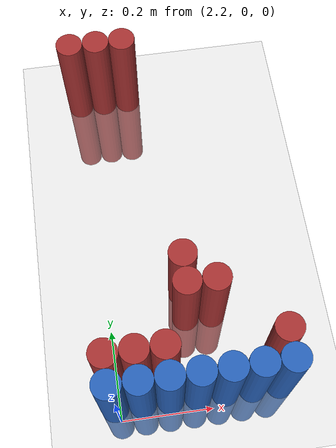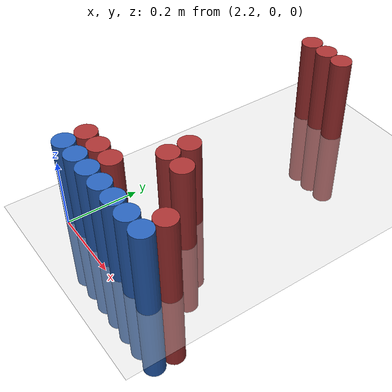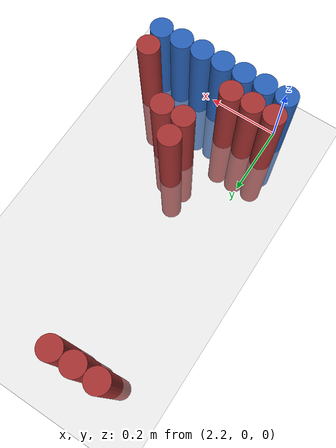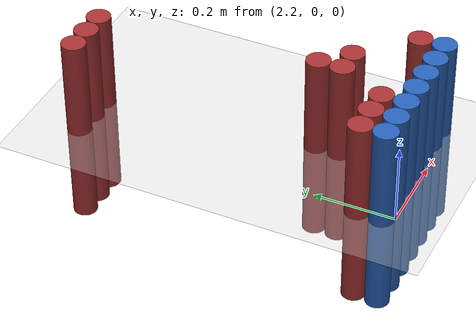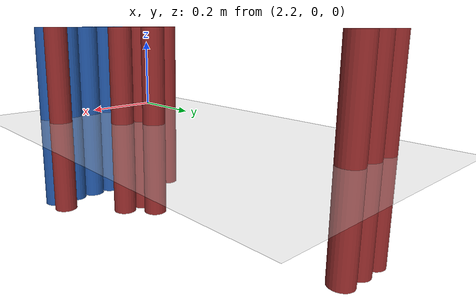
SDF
<sdf version="1.6">
 <world name="default">
  <model name="ground_plane">
   <static>1</static>
   <link name="link">
    <collision name="collision">
     <geometry><plane><normal>0 0 1</normal><size>100 100</size></plane></geometry>
     <surface><friction><ode><mu>100</mu><mu2>50</mu2></ode></friction></surface>
    </collision>
    <visual name="visual">
     <cast_shadows>0</cast_shadows>
     <geometry><plane><normal>0 0 1</normal><size>100 100</size></plane></geometry>
     <material>
      <script><uri>file://media/materials/scripts/gazebo.material</uri><name>Gazebo/Grey</name></script>
     </material>
    </visual>
   </link>
  </model>
  <model name="unit_cylinder_186">
   <static>1</static>
   <pose>2.190000 0.810000 0.000000 0.000000 0.000000 0.000000</pose>
   <link name="link">
    <inertial>
     <mass>1</mass>
     <inertia><ixx>0.145833</ixx><ixy>0</ixy><ixz>0</ixz><iyy>0.145833</iyy><iyz>0</iyz><izz>0.125</izz></inertia>
    </inertial>
    <collision name="collision">
     <geometry><cylinder><radius>0.030000</radius><length>0.5</length></cylinder></geometry>
    </collision>
    <visual name="visual">
     <geometry><cylinder><radius>0.030000</radius><length>0.5</length></cylinder></geometry>
     <material>
      <ambient>0.648000 0.192000 0.192000 1</ambient>
      <diffuse>0.648000 0.192000 0.192000 1</diffuse>
     </material>
     <material>
      <script><name>Gazebo/Grey</name><uri>file://media/materials/scripts/gazebo.material</uri></script>
     </material>
    </visual>
   </link>
  </model>
  <model name="unit_cylinder_187">
   <static>1</static>
   <pose>2.250000 0.810000 0.000000 0.000000 0.000000 0.000000</pose>
   <link name="link">
    <inertial>
     <mass>1</mass>
     <inertia><ixx>0.145833</ixx><ixy>0</ixy><ixz>0</ixz><iyy>0.145833</iyy><iyz>0</iyz><izz>0.125</izz></inertia>
    </inertial>
    <collision name="collision">
     <geometry><cylinder><radius>0.030000</radius><length>0.5</length></cylinder></geometry>
    </collision>
    <visual name="visual">
     <geometry><cylinder><radius>0.030000</radius><length>0.5</length></cylinder></geometry>
     <material>
      <ambient>0.648000 0.192000 0.192000 1</ambient>
      <diffuse>0.648000 0.192000 0.192000 1</diffuse>
     </material>
     <material>
      <script><name>Gazebo/Grey</name><uri>file://media/materials/scripts/gazebo.material</uri></script>
     </material>
    </visual>
   </link>
  </model>
  <model name="unit_cylinder_188">
   <static>1</static>
   <pose>2.310000 0.810000 0.000000 0.000000 0.000000 0.000000</pose>
   <link name="link">
    <inertial>
     <mass>1</mass>
     <inertia><ixx>0.145833</ixx><ixy>0</ixy><ixz>0</ixz><iyy>0.145833</iyy><iyz>0</iyz><izz>0.125</izz></inertia>
    </inertial>
    <collision name="collision">
     <geometry><cylinder><radius>0.030000</radius><length>0.5</length></cylinder></geometry>
    </collision>
    <visual name="visual">
     <geometry><cylinder><radius>0.030000</radius><length>0.5</length></cylinder></geometry>
     <material>
      <ambient>0.648000 0.192000 0.192000 1</ambient>
      <diffuse>0.648000 0.192000 0.192000 1</diffuse>
     </material>
     <material>
      <script><name>Gazebo/Grey</name><uri>file://media/materials/scripts/gazebo.material</uri></script>
     </material>
    </visual>
   </link>
  </model>
  <model name="unit_cylinder_203">
   <static>1</static>
   <pose>2.370000 0.270000 0.000000 0.000000 0.000000 0.000000</pose>
   <link name="link">
    <inertial>
     <mass>1</mass>
     <inertia><ixx>0.145833</ixx><ixy>0</ixy><ixz>0</ixz><iyy>0.145833</iyy><iyz>0</iyz><izz>0.125</izz></inertia>
    </inertial>
    <collision name="collision">
     <geometry><cylinder><radius>0.030000</radius><length>0.5</length></cylinder></geometry>
    </collision>
    <visual name="visual">
     <geometry><cylinder><radius>0.030000</radius><length>0.5</length></cylinder></geometry>
     <material>
      <ambient>0.648000 0.192000 0.192000 1</ambient>
      <diffuse>0.648000 0.192000 0.192000 1</diffuse>
     </material>
     <material>
      <script><name>Gazebo/Grey</name><uri>file://media/materials/scripts/gazebo.material</uri></script>
     </material>
    </visual>
   </link>
  </model>
  <model name="unit_cylinder_205">
   <static>1</static>
   <pose>2.370000 0.210000 0.000000 0.000000 0.000000 0.000000</pose>
   <link name="link">
    <inertial>
     <mass>1</mass>
     <inertia><ixx>0.145833</ixx><ixy>0</ixy><ixz>0</ixz><iyy>0.145833</iyy><iyz>0</iyz><izz>0.125</izz></inertia>
    </inertial>
    <collision name="collision">
     <geometry><cylinder><radius>0.030000</radius><length>0.5</length></cylinder></geometry>
    </collision>
    <visual name="visual">
     <geometry><cylinder><radius>0.030000</radius><length>0.5</length></cylinder></geometry>
     <material>
      <ambient>0.648000 0.192000 0.192000 1</ambient>
      <diffuse>0.648000 0.192000 0.192000 1</diffuse>
     </material>
     <material>
      <script><name>Gazebo/Grey</name><uri>file://media/materials/scripts/gazebo.material</uri></script>
     </material>
    </visual>
   </link>
  </model>
  <model name="unit_cylinder_206">
   <static>1</static>
   <pose>2.430000 0.210000 0.000000 0.000000 0.000000 0.000000</pose>
   <link name="link">
    <inertial>
     <mass>1</mass>
     <inertia><ixx>0.145833</ixx><ixy>0</ixy><ixz>0</ixz><iyy>0.145833</iyy><iyz>0</iyz><izz>0.125</izz></inertia>
    </inertial>
    <collision name="collision">
     <geometry><cylinder><radius>0.030000</radius><length>0.5</length></cylinder></geometry>
    </collision>
    <visual name="visual">
     <geometry><cylinder><radius>0.030000</radius><length>0.5</length></cylinder></geometry>
     <material>
      <ambient>0.648000 0.192000 0.192000 1</ambient>
      <diffuse>0.648000 0.192000 0.192000 1</diffuse>
     </material>
     <material>
      <script><name>Gazebo/Grey</name><uri>file://media/materials/scripts/gazebo.material</uri></script>
     </material>
    </visual>
   </link>
  </model>
  <model name="unit_cylinder_222">
   <static>1</static>
   <pose>2.190000 0.090000 0.000000 0.000000 0.000000 0.000000</pose>
   <link name="link">
    <inertial>
     <mass>1</mass>
     <inertia><ixx>0.145833</ixx><ixy>0</ixy><ixz>0</ixz><iyy>0.145833</iyy><iyz>0</iyz><izz>0.125</izz></inertia>
    </inertial>
    <collision name="collision">
     <geometry><cylinder><radius>0.030000</radius><length>0.5</length></cylinder></geometry>
    </collision>
    <visual name="visual">
     <geometry><cylinder><radius>0.030000</radius><length>0.5</length></cylinder></geometry>
     <material>
      <ambient>0.648000 0.192000 0.192000 1</ambient>
      <diffuse>0.648000 0.192000 0.192000 1</diffuse>
     </material>
     <material>
      <script><name>Gazebo/Grey</name><uri>file://media/materials/scripts/gazebo.material</uri></script>
     </material>
    </visual>
   </link>
  </model>
  <model name="unit_cylinder_223">
   <static>1</static>
   <pose>2.250000 0.090000 0.000000 0.000000 0.000000 0.000000</pose>
   <link name="link">
    <inertial>
     <mass>1</mass>
     <inertia><ixx>0.145833</ixx><ixy>0</ixy><ixz>0</ixz><iyy>0.145833</iyy><iyz>0</iyz><izz>0.125</izz></inertia>
    </inertial>
    <collision name="collision">
     <geometry><cylinder><radius>0.030000</radius><length>0.5</length></cylinder></geometry>
    </collision>
    <visual name="visual">
     <geometry><cylinder><radius>0.030000</radius><length>0.5</length></cylinder></geometry>
     <material>
      <ambient>0.648000 0.192000 0.192000 1</ambient>
      <diffuse>0.648000 0.192000 0.192000 1</diffuse>
     </material>
     <material>
      <script><name>Gazebo/Grey</name><uri>file://media/materials/scripts/gazebo.material</uri></script>
     </material>
    </visual>
   </link>
  </model>
  <model name="unit_cylinder_224">
   <static>1</static>
   <pose>2.310000 0.090000 0.000000 0.000000 0.000000 0.000000</pose>
   <link name="link">
    <inertial>
     <mass>1</mass>
     <inertia><ixx>0.145833</ixx><ixy>0</ixy><ixz>0</ixz><iyy>0.145833</iyy><iyz>0</iyz><izz>0.125</izz></inertia>
    </inertial>
    <collision name="collision">
     <geometry><cylinder><radius>0.030000</radius><length>0.5</length></cylinder></geometry>
    </collision>
    <visual name="visual">
     <geometry><cylinder><radius>0.030000</radius><length>0.5</length></cylinder></geometry>
     <material>
      <ambient>0.648000 0.192000 0.192000 1</ambient>
      <diffuse>0.648000 0.192000 0.192000 1</diffuse>
     </material>
     <material>
      <script><name>Gazebo/Grey</name><uri>file://media/materials/scripts/gazebo.material</uri></script>
     </material>
    </visual>
   </link>
  </model>
  <model name="unit_cylinder_225">
   <static>1</static>
   <pose>2.550000 0.090000 0.000000 0.000000 0.000000 0.000000</pose>
   <link name="link">
    <inertial>
     <mass>1</mass>
     <inertia><ixx>0.145833</ixx><ixy>0</ixy><ixz>0</ixz><iyy>0.145833</iyy><iyz>0</iyz><izz>0.125</izz></inertia>
    </inertial>
    <collision name="collision">
     <geometry><cylinder><radius>0.030000</radius><length>0.5</length></cylinder></geometry>
    </collision>
    <visual name="visual">
     <geometry><cylinder><radius>0.030000</radius><length>0.5</length></cylinder></geometry>
     <material>
      <ambient>0.648000 0.192000 0.192000 1</ambient>
      <diffuse>0.648000 0.192000 0.192000 1</diffuse>
     </material>
     <material>
      <script><name>Gazebo/Grey</name><uri>file://media/materials/scripts/gazebo.material</uri></script>
     </material>
    </visual>
   </link>
  </model>
  <model name="unit_cylinder_240">
   <static>1</static>
   <pose>2.190000 0.030000 0.000000 0.000000 0.000000 0.000000</pose>
   <link name="link">
    <inertial>
     <mass>1</mass>
     <inertia><ixx>0.145833</ixx><ixy>0</ixy><ixz>0</ixz><iyy>0.145833</iyy><iyz>0</iyz><izz>0.125</izz></inertia>
    </inertial>
    <collision name="collision">
     <geometry><cylinder><radius>0.030000</radius><length>0.5</length></cylinder></geometry>
    </collision>
    <visual name="visual">
     <geometry><cylinder><radius>0.030000</radius><length>0.5</length></cylinder></geometry>
     <material>
      <ambient>0.152000 0.379000 0.720000 1</ambient>
      <diffuse>0.152000 0.379000 0.720000 1</diffuse>
     </material>
     <material>
      <script><name>Gazebo/Grey</name><uri>file://media/materials/scripts/gazebo.material</uri></script>
     </material>
    </visual>
   </link>
  </model>
  <model name="unit_cylinder_241">
   <static>1</static>
   <pose>2.250000 0.030000 0.000000 0.000000 0.000000 0.000000</pose>
   <link name="link">
    <inertial>
     <mass>1</mass>
     <inertia><ixx>0.145833</ixx><ixy>0</ixy><ixz>0</ixz><iyy>0.145833</iyy><iyz>0</iyz><izz>0.125</izz></inertia>
    </inertial>
    <collision name="collision">
     <geometry><cylinder><radius>0.030000</radius><length>0.5</length></cylinder></geometry>
    </collision>
    <visual name="visual">
     <geometry><cylinder><radius>0.030000</radius><length>0.5</length></cylinder></geometry>
     <material>
      <ambient>0.152000 0.379000 0.720000 1</ambient>
      <diffuse>0.152000 0.379000 0.720000 1</diffuse>
     </material>
     <material>
      <script><name>Gazebo/Grey</name><uri>file://media/materials/scripts/gazebo.material</uri></script>
     </material>
    </visual>
   </link>
  </model>
  <model name="unit_cylinder_242">
   <static>1</static>
   <pose>2.310000 0.030000 0.000000 0.000000 0.000000 0.000000</pose>
   <link name="link">
    <inertial>
     <mass>1</mass>
     <inertia><ixx>0.145833</ixx><ixy>0</ixy><ixz>0</ixz><iyy>0.145833</iyy><iyz>0</iyz><izz>0.125</izz></inertia>
    </inertial>
    <collision name="collision">
     <geometry><cylinder><radius>0.030000</radius><length>0.5</length></cylinder></geometry>
    </collision>
    <visual name="visual">
     <geometry><cylinder><radius>0.030000</radius><length>0.5</length></cylinder></geometry>
     <material>
      <ambient>0.152000 0.379000 0.720000 1</ambient>
      <diffuse>0.152000 0.379000 0.720000 1</diffuse>
     </material>
     <material>
      <script><name>Gazebo/Grey</name><uri>file://media/materials/scripts/gazebo.material</uri></script>
     </material>
    </visual>
   </link>
  </model>
  <model name="unit_cylinder_243">
   <static>1</static>
   <pose>2.370000 0.030000 0.000000 0.000000 0.000000 0.000000</pose>
   <link name="link">
    <inertial>
     <mass>1</mass>
     <inertia><ixx>0.145833</ixx><ixy>0</ixy><ixz>0</ixz><iyy>0.145833</iyy><iyz>0</iyz><izz>0.125</izz></inertia>
    </inertial>
    <collision name="collision">
     <geometry><cylinder><radius>0.030000</radius><length>0.5</length></cylinder></geometry>
    </collision>
    <visual name="visual">
     <geometry><cylinder><radius>0.030000</radius><length>0.5</length></cylinder></geometry>
     <material>
      <ambient>0.152000 0.379000 0.720000 1</ambient>
      <diffuse>0.152000 0.379000 0.720000 1</diffuse>
     </material>
     <material>
      <script><name>Gazebo/Grey</name><uri>file://media/materials/scripts/gazebo.material</uri></script>
     </material>
    </visual>
   </link>
  </model>
  <model name="unit_cylinder_244">
   <static>1</static>
   <pose>2.430000 0.030000 0.000000 0.000000 0.000000 0.000000</pose>
   <link name="link">
    <inertial>
     <mass>1</mass>
     <inertia><ixx>0.145833</ixx><ixy>0</ixy><ixz>0</ixz><iyy>0.145833</iyy><iyz>0</iyz><izz>0.125</izz></inertia>
    </inertial>
    <collision name="collision">
     <geometry><cylinder><radius>0.030000</radius><length>0.5</length></cylinder></geometry>
    </collision>
    <visual name="visual">
     <geometry><cylinder><radius>0.030000</radius><length>0.5</length></cylinder></geometry>
     <material>
      <ambient>0.152000 0.379000 0.720000 1</ambient>
      <diffuse>0.152000 0.379000 0.720000 1</diffuse>
     </material>
     <material>
      <script><name>Gazebo/Grey</name><uri>file://media/materials/scripts/gazebo.material</uri></script>
     </material>
    </visual>
   </link>
  </model>
  <model name="unit_cylinder_245">
   <static>1</static>
   <pose>2.490000 0.030000 0.000000 0.000000 0.000000 0.000000</pose>
   <link name="link">
    <inertial>
     <mass>1</mass>
     <inertia><ixx>0.145833</ixx><ixy>0</ixy><ixz>0</ixz><iyy>0.145833</iyy><iyz>0</iyz><izz>0.125</izz></inertia>
    </inertial>
    <collision name="collision">
     <geometry><cylinder><radius>0.030000</radius><length>0.5</length></cylinder></geometry>
    </collision>
    <visual name="visual">
     <geometry><cylinder><radius>0.030000</radius><length>0.5</length></cylinder></geometry>
     <material>
      <ambient>0.152000 0.379000 0.720000 1</ambient>
      <diffuse>0.152000 0.379000 0.720000 1</diffuse>
     </material>
     <material>
      <script><name>Gazebo/Grey</name><uri>file://media/materials/scripts/gazebo.material</uri></script>
     </material>
    </visual>
   </link>
  </model>
  <model name="unit_cylinder_246">
   <static>1</static>
   <pose>2.550000 0.030000 0.000000 0.000000 0.000000 0.000000</pose>
   <link name="link">
    <inertial>
     <mass>1</mass>
     <inertia><ixx>0.145833</ixx><ixy>0</ixy><ixz>0</ixz><iyy>0.145833</iyy><iyz>0</iyz><izz>0.125</izz></inertia>
    </inertial>
    <collision name="collision">
     <geometry><cylinder><radius>0.030000</radius><length>0.5</length></cylinder></geometry>
    </collision>
    <visual name="visual">
     <geometry><cylinder><radius>0.030000</radius><length>0.5</length></cylinder></geometry>
     <material>
      <ambient>0.152000 0.379000 0.720000 1</ambient>
      <diffuse>0.152000 0.379000 0.720000 1</diffuse>
     </material>
     <material>
      <script><name>Gazebo/Grey</name><uri>file://media/materials/scripts/gazebo.material</uri></script>
     </material>
    </visual>
   </link>
  </model>
 </world>
</sdf>
